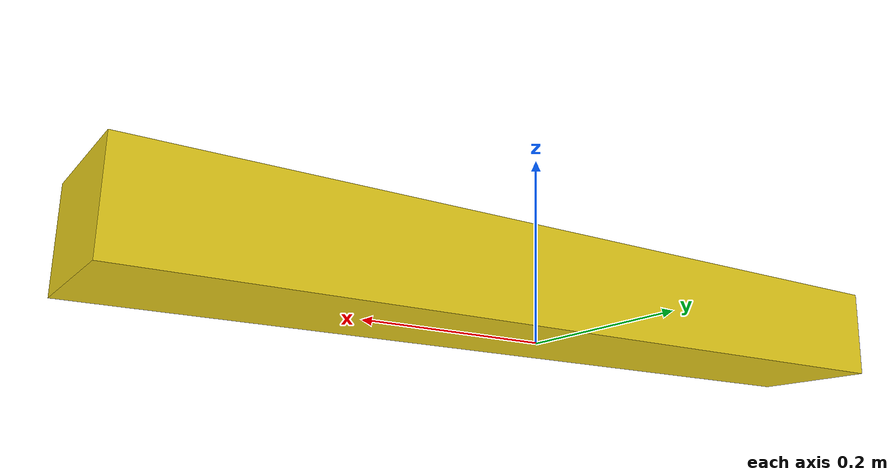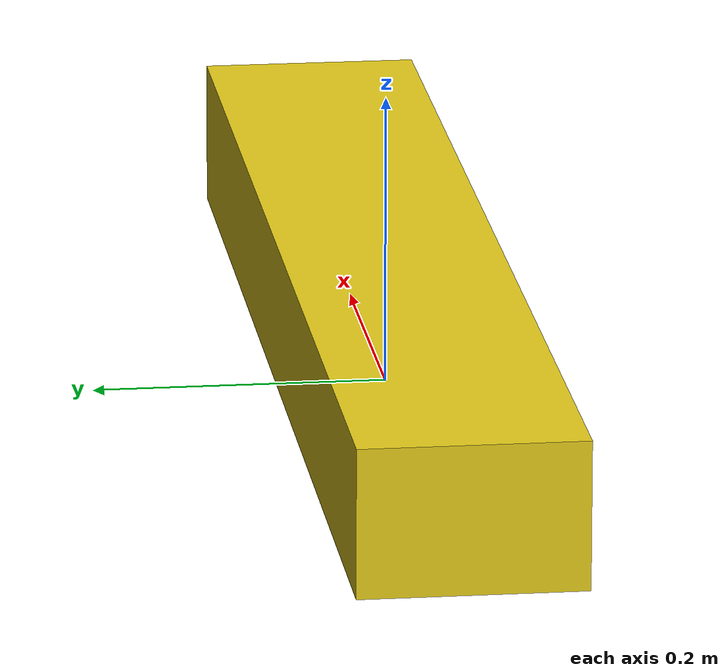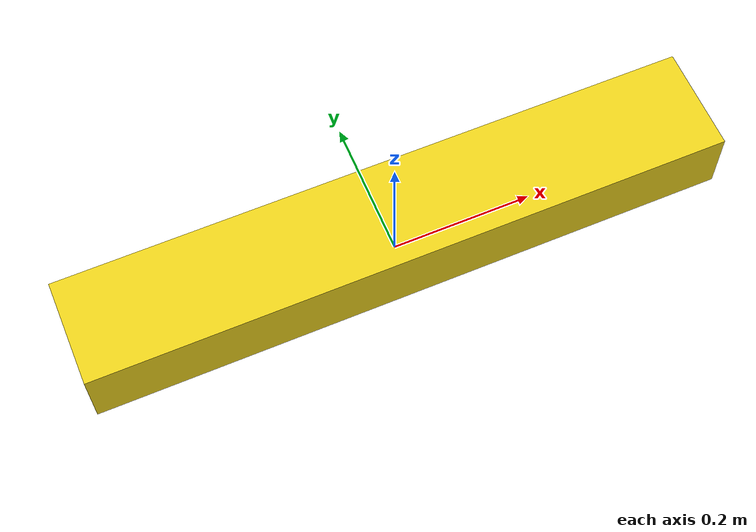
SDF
<?xml version="1.0"?>
<sdf version="1.6">
  <model name="drc_practice_yellow_parking_block">
    <static>true</static>
    <link name="link">
      <collision name="collision">
        <geometry>
          <box>
            <size>0.9 0.15 0.1</size>
          </box>
        </geometry>
      </collision>
      <visual name="visual">
        <pose>0 0 0.05 0 0 0</pose>
        <geometry>
          <box>
            <size>0.9 0.15 0.1</size>
          </box>
        </geometry>
        <material>
          <ambient>0.9 0.8 0.1 1</ambient>
          <diffuse>0.9 0.8 0.1 1</diffuse>
          <specular>0.1 0.1 0.1 1</specular>
        </material>
      </visual>
    </link>
  </model>
</sdf>
